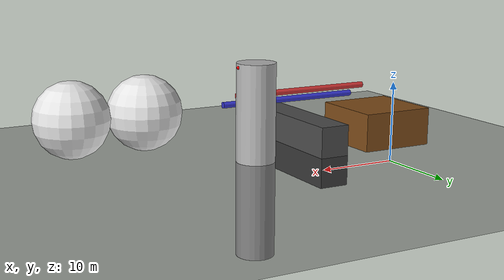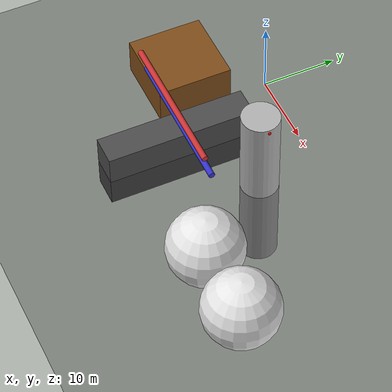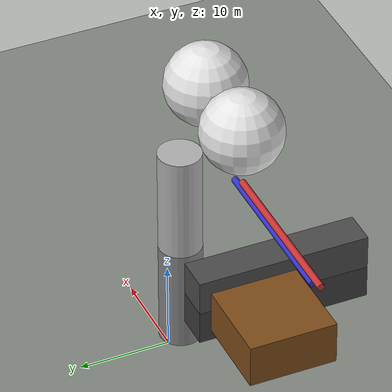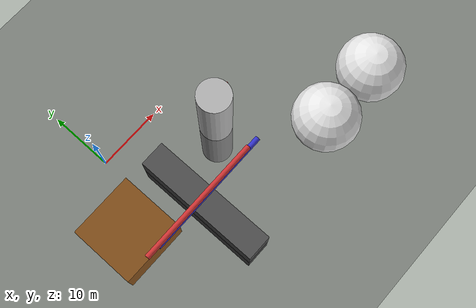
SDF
<?xml version="1.0" ?>
<sdf version="1.8">
  <world name="jamnagar_emulation">
    <physics name="1ms" type="ignored">
      <max_step_size>0.001</max_step_size>
      <real_time_factor>1.0</real_time_factor>
    </physics>
    <plugin filename="gz-sim-physics-system" name="gz::sim::systems::Physics"/>
    <plugin filename="gz-sim-user-commands-system" name="gz::sim::systems::UserCommands"/>
    <plugin filename="gz-sim-scene-broadcaster-system" name="gz::sim::systems::SceneBroadcaster"/>
    <plugin filename="gz-sim-sensors-system" name="gz::sim::systems::Sensors">
      <render_engine>ogre2</render_engine>
    </plugin>

    <light type="directional" name="sun">
      <cast_shadows>true</cast_shadows>
      <pose>0 0 10 0 0 0</pose>
      <diffuse>0.8 0.8 0.8 1</diffuse>
      <specular>0.2 0.2 0.2 1</specular>
      <attenuation>
        <range>1000</range>
        <constant>0.9</constant>
        <linear>0.01</linear>
        <quadratic>0.001</quadratic>
      </attenuation>
      <direction>-0.5 0.1 -0.9</direction>
    </light>

    <model name="ground_plane">
      <static>true</static>
      <link name="link">
        <collision name="collision">
          <geometry><plane><normal>0 0 1</normal><size>100 100</size></plane></geometry>
        </collision>
        <visual name="visual">
          <geometry><plane><normal>0 0 1</normal><size>100 100</size></plane></geometry>
          <material>
            <ambient>0.1 0.1 0.1 1</ambient>
            <diffuse>0.1 0.1 0.1 1</diffuse>
            <specular>0.1 0.1 0.1 1</specular>
          </material>
        </visual>
      </link>
    </model>

    <!-- EXTENSIVE REFINERY ASSETS: NCI-25 Mega Plant Configuration -->

    <!-- Central Distillation Column B2 -->
    <model name="distillation_column_b2">
      <static>true</static>
      <pose>15 -8 0 0 0 0</pose>
      <link name="link">
        <visual name="main_column">
          <geometry><cylinder><radius>2.5</radius><length>25.0</length></cylinder></geometry>
          <material><ambient>0.6 0.6 0.6 1</ambient><diffuse>0.7 0.7 0.7 1</diffuse></material>
        </visual>
        <collision name="collision">
          <geometry><cylinder><radius>2.5</radius><length>25.0</length></cylinder></geometry>
        </collision>

        <!-- NAVIER-STOKES GAS EMITTER -->
        <visual name="leak_visual">
          <pose>2.5 0 12.0 0 0 0</pose>
          <geometry><sphere><radius>0.2</radius></sphere></geometry>
          <material><ambient>1 0 0 1</ambient><emissive>1 0 0 1</emissive></material>
        </visual>

        <particle_emitter name="gas_leak_emitter" type="point">
          <pose>2.5 0 12.0 0 1.57 0</pose>
          <spawn_rate>500</spawn_rate>
          <min_velocity>1.5</min_velocity>
          <max_velocity>3.5</max_velocity>
          <lifetime>8.0</lifetime>
          <size>0.5 0.5 0.5</size>
          <color>0.7 0.8 0.7 0.4</color>
          <particle_scatter_ratio>0.6</particle_scatter_ratio>
        </particle_emitter>
      </link>
    </model>

    <!-- Pipe Racks Sector A -->
    <model name="pipe_rack_alpha">
      <static>true</static>
      <pose>5 -15 0 0 0 1.57</pose>
      <link name="link">
        <visual name="frame">
          <geometry><box><size>20 4 8</size></box></geometry>
          <material><ambient>0.3 0.3 0.3 1</ambient></material>
        </visual>
        <!-- Horizontal Pipes -->
        <visual name="pipe1">
          <pose>0 1 7 1.57 0 0</pose>
          <geometry><cylinder><radius>0.4</radius><length>20</length></cylinder></geometry>
          <material><ambient>0.8 0.2 0.2 1</ambient></material>
        </visual>
        <visual name="pipe2">
          <pose>0 -1 6 1.57 0 0</pose>
          <geometry><cylinder><radius>0.4</radius><length>20</length></cylinder></geometry>
          <material><ambient>0.2 0.2 0.8 1</ambient></material>
        </visual>
      </link>
    </model>

    <!-- Storage Spheres (LPG Sector) -->
    <model name="storage_sphere_1">
      <static>true</static>
      <pose>25 -20 5 0 0 0</pose>
      <link name="link">
        <visual name="visual">
          <geometry><sphere><radius>5.0</radius></sphere></geometry>
          <material><ambient>0.9 0.9 0.9 1</ambient></material>
        </visual>
        <collision name="collision">
          <geometry><sphere><radius>5.0</radius></sphere></geometry>
        </collision>
      </link>
    </model>

    <model name="storage_sphere_2">
      <static>true</static>
      <pose>35 -20 5 0 0 0</pose>
      <link name="link">
        <visual name="visual">
          <geometry><sphere><radius>5.0</radius></sphere></geometry>
          <material><ambient>0.9 0.9 0.9 1</ambient></material>
        </visual>
        <collision name="collision">
          <geometry><sphere><radius>5.0</radius></sphere></geometry>
        </collision>
      </link>
    </model>

    <!-- Pump House -->
    <model name="pump_house_1">
      <static>true</static>
      <pose>-5 -10 2.5 0 0 0</pose>
      <link name="link">
        <visual name="visual">
          <geometry><box><size>10 10 5</size></box></geometry>
          <material><ambient>0.5 0.3 0.1 1</ambient></material>
        </visual>
        <collision name="collision">
          <geometry><box><size>10 10 5</size></box></geometry>
        </collision>
      </link>
    </model>

  </world>
</sdf>
